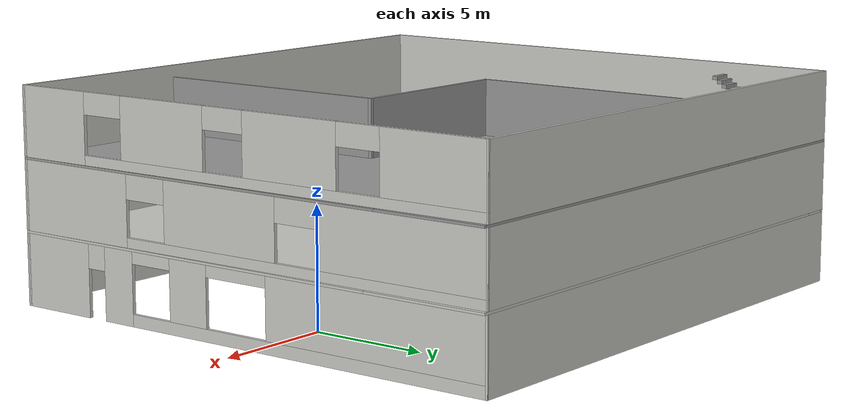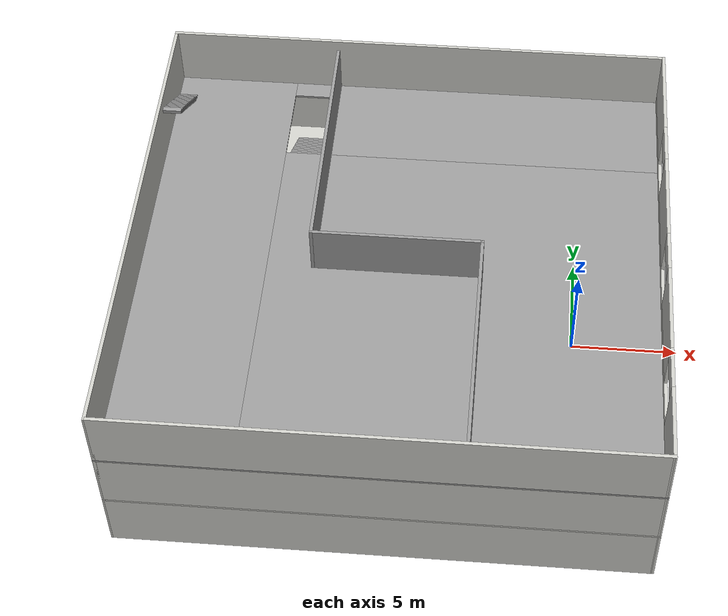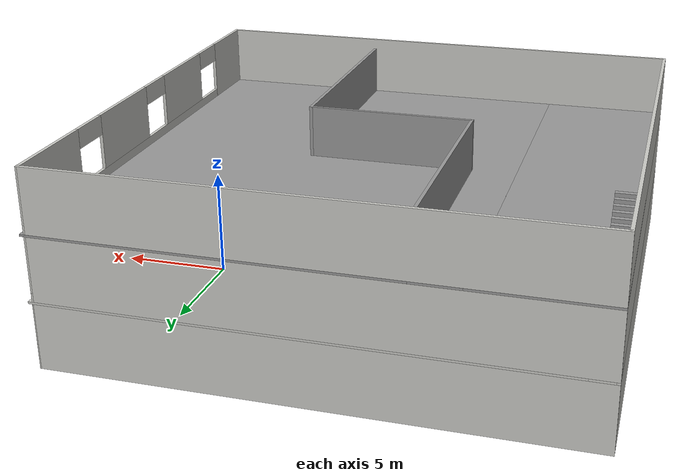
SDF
<?xml version='1.0'?>
<sdf version='1.7'>
  <model name='low_building'>
    <pose>-8.0788 -0.655 0 0 -0 0</pose>
    <link name='Floor_0'>
      <pose>0.000103 -0 3 0 -0 0</pose>
      <visual name='Floor_0_Visual_0'>
        <pose>-11.8375 0 0.05 0 -0 0</pose>
        <geometry>
          <box>
            <size>0.151533 23.0012 0.1</size>
          </box>
        </geometry>
        <material>
          <script>
            <uri>file://media/materials/scripts/gazebo.material</uri>
            <name>Gazebo/CeilingTiled</name>
          </script>
          <ambient>1 1 1 1</ambient>
        </material>
        <meta>
          <layer>1</layer>
        </meta>
      </visual>
      <collision name='Floor_0_Collision_0'>
        <geometry>
          <box>
            <size>0.151533 23.0012 0.1</size>
          </box>
        </geometry>
        <pose>-11.8375 0 0.05 0 -0 0</pose>
      </collision>
      <visual name='Floor_0_Visual_1'>
        <pose>0.075766 -2.684 0.05 0 -0 0</pose>
        <geometry>
          <box>
            <size>23.6751 17.6332 0.1</size>
          </box>
        </geometry>
        <material>
          <script>
            <uri>file://media/materials/scripts/gazebo.material</uri>
            <name>Gazebo/CeilingTiled</name>
          </script>
          <ambient>1 1 1 1</ambient>
        </material>
        <meta>
          <layer>1</layer>
        </meta>
      </visual>
      <collision name='Floor_0_Collision_1'>
        <geometry>
          <box>
            <size>23.6751 17.6332 0.1</size>
          </box>
        </geometry>
        <pose>0.075766 -2.684 0.05 0 -0 0</pose>
      </collision>
      <visual name='Floor_0_Visual_2'>
        <pose>0.575766 8.81661 0.05 0 -0 0</pose>
        <geometry>
          <box>
            <size>22.6751 5.36801 0.1</size>
          </box>
        </geometry>
        <material>
          <script>
            <uri>file://media/materials/scripts/gazebo.material</uri>
            <name>Gazebo/CeilingTiled</name>
          </script>
          <ambient>1 1 1 1</ambient>
        </material>
        <meta>
          <layer>1</layer>
        </meta>
      </visual>
      <collision name='Floor_0_Collision_2'>
        <geometry>
          <box>
            <size>22.6751 5.36801 0.1</size>
          </box>
        </geometry>
        <pose>0.575766 8.81661 0.05 0 -0 0</pose>
      </collision>
      <visual name='Floor_0_Visual_3'>
        <pose>-11.2618 10.5666 0.05 0 -0 0</pose>
        <geometry>
          <box>
            <size>1 1.86801 0.1</size>
          </box>
        </geometry>
        <material>
          <script>
            <uri>file://media/materials/scripts/gazebo.material</uri>
            <name>Gazebo/CeilingTiled</name>
          </script>
          <ambient>1 1 1 1</ambient>
        </material>
        <meta>
          <layer>1</layer>
        </meta>
      </visual>
      <collision name='Floor_0_Collision_3'>
        <geometry>
          <box>
            <size>1 1.86801 0.1</size>
          </box>
        </geometry>
        <pose>-11.2618 10.5666 0.05 0 -0 0</pose>
      </collision>
    </link>
    <link name='Floor_1'>
      <pose>0.000103 -0 6 0 -0 0</pose>
      <visual name='Floor_1_Visual_0'>
        <pose>-8.99477 0 0.05 0 -0 0</pose>
        <geometry>
          <box>
            <size>5.83706 23.0012 0.1</size>
          </box>
        </geometry>
        <material>
          <script>
            <uri>file://media/materials/scripts/gazebo.material</uri>
            <name>Gazebo/Grey</name>
          </script>
          <ambient>1 1 1 1</ambient>
        </material>
        <meta>
          <layer>2</layer>
        </meta>
      </visual>
      <collision name='Floor_1_Collision_0'>
        <geometry>
          <box>
            <size>5.83706 23.0012 0.1</size>
          </box>
        </geometry>
        <pose>-8.99477 0 0.05 0 -0 0</pose>
      </collision>
      <visual name='Floor_1_Visual_1'>
        <pose>2.91853 -2.44136 0.05 0 -0 0</pose>
        <geometry>
          <box>
            <size>17.9895 18.1185 0.1</size>
          </box>
        </geometry>
        <material>
          <script>
            <uri>file://media/materials/scripts/gazebo.material</uri>
            <name>Gazebo/Grey</name>
          </script>
          <ambient>1 1 1 1</ambient>
        </material>
        <meta>
          <layer>2</layer>
        </meta>
      </visual>
      <collision name='Floor_1_Collision_1'>
        <geometry>
          <box>
            <size>17.9895 18.1185 0.1</size>
          </box>
        </geometry>
        <pose>2.91853 -2.44136 0.05 0 -0 0</pose>
      </collision>
      <visual name='Floor_1_Visual_2'>
        <pose>3.95054 9.05926 0.05 0 -0 0</pose>
        <geometry>
          <box>
            <size>15.9255 4.88271 0.1</size>
          </box>
        </geometry>
        <material>
          <script>
            <uri>file://media/materials/scripts/gazebo.material</uri>
            <name>Gazebo/Grey</name>
          </script>
          <ambient>1 1 1 1</ambient>
        </material>
        <meta>
          <layer>2</layer>
        </meta>
      </visual>
      <collision name='Floor_1_Collision_2'>
        <geometry>
          <box>
            <size>15.9255 4.88271 0.1</size>
          </box>
        </geometry>
        <pose>3.95054 9.05926 0.05 0 -0 0</pose>
      </collision>
      <visual name='Floor_1_Visual_3'>
        <pose>-5.04424 10.9955 0.05 0 -0 0</pose>
        <geometry>
          <box>
            <size>2.06401 1.01031 0.1</size>
          </box>
        </geometry>
        <material>
          <script>
            <uri>file://media/materials/scripts/gazebo.material</uri>
            <name>Gazebo/Grey</name>
          </script>
          <ambient>1 1 1 1</ambient>
        </material>
        <meta>
          <layer>2</layer>
        </meta>
      </visual>
      <collision name='Floor_1_Collision_3'>
        <geometry>
          <box>
            <size>2.06401 1.01031 0.1</size>
          </box>
        </geometry>
        <pose>-5.04424 10.9955 0.05 0 -0 0</pose>
      </collision>
    </link>
    <link name='Stairs_2'>
      <visual name='Stairs_2_Visual_0'>
        <pose>-5.04413 10.3612 3.08333 0 -0 0</pose>
        <geometry>
          <box>
            <size>2.06401 0.25816 0.166667</size>
          </box>
        </geometry>
        <material>
          <script>
            <uri>file://media/materials/scripts/gazebo.material</uri>
            <name>Gazebo/Grey</name>
          </script>
          <ambient>1 1 1 1</ambient>
        </material>
        <meta>
          <layer>1</layer>
        </meta>
      </visual>
      <collision name='Stairs_2_Collision_0'>
        <geometry>
          <box>
            <size>2.06401 0.25816 0.166667</size>
          </box>
        </geometry>
        <pose>-5.04413 10.3612 3.08333 0 -0 0</pose>
      </collision>
      <visual name='Stairs_2_Visual_1'>
        <pose>-5.04413 10.1031 3.25 0 -0 0</pose>
        <geometry>
          <box>
            <size>2.06401 0.25816 0.166667</size>
          </box>
        </geometry>
        <material>
          <script>
            <uri>file://media/materials/scripts/gazebo.material</uri>
            <name>Gazebo/Grey</name>
          </script>
          <ambient>1 1 1 1</ambient>
        </material>
        <meta>
          <layer>1</layer>
        </meta>
      </visual>
      <collision name='Stairs_2_Collision_1'>
        <geometry>
          <box>
            <size>2.06401 0.25816 0.166667</size>
          </box>
        </geometry>
        <pose>-5.04413 10.1031 3.25 0 -0 0</pose>
      </collision>
      <visual name='Stairs_2_Visual_2'>
        <pose>-5.04413 9.8449 3.41667 0 -0 0</pose>
        <geometry>
          <box>
            <size>2.06401 0.25816 0.166667</size>
          </box>
        </geometry>
        <material>
          <script>
            <uri>file://media/materials/scripts/gazebo.material</uri>
            <name>Gazebo/Grey</name>
          </script>
          <ambient>1 1 1 1</ambient>
        </material>
        <meta>
          <layer>1</layer>
        </meta>
      </visual>
      <collision name='Stairs_2_Collision_2'>
        <geometry>
          <box>
            <size>2.06401 0.25816 0.166667</size>
          </box>
        </geometry>
        <pose>-5.04413 9.8449 3.41667 0 -0 0</pose>
      </collision>
      <visual name='Stairs_2_Visual_3'>
        <pose>-5.04413 9.58674 3.58333 0 -0 0</pose>
        <geometry>
          <box>
            <size>2.06401 0.25816 0.166667</size>
          </box>
        </geometry>
        <material>
          <script>
            <uri>file://media/materials/scripts/gazebo.material</uri>
            <name>Gazebo/Grey</name>
          </script>
          <ambient>1 1 1 1</ambient>
        </material>
        <meta>
          <layer>1</layer>
        </meta>
      </visual>
      <collision name='Stairs_2_Collision_3'>
        <geometry>
          <box>
            <size>2.06401 0.25816 0.166667</size>
          </box>
        </geometry>
        <pose>-5.04413 9.58674 3.58333 0 -0 0</pose>
      </collision>
      <visual name='Stairs_2_Visual_4'>
        <pose>-5.04413 9.32858 3.75 0 -0 0</pose>
        <geometry>
          <box>
            <size>2.06401 0.25816 0.166667</size>
          </box>
        </geometry>
        <material>
          <script>
            <uri>file://media/materials/scripts/gazebo.material</uri>
            <name>Gazebo/Grey</name>
          </script>
          <ambient>1 1 1 1</ambient>
        </material>
        <meta>
          <layer>1</layer>
        </meta>
      </visual>
      <collision name='Stairs_2_Collision_4'>
        <geometry>
          <box>
            <size>2.06401 0.25816 0.166667</size>
          </box>
        </geometry>
        <pose>-5.04413 9.32858 3.75 0 -0 0</pose>
      </collision>
      <visual name='Stairs_2_Visual_5'>
        <pose>-5.04413 9.07042 3.91667 0 -0 0</pose>
        <geometry>
          <box>
            <size>2.06401 0.25816 0.166667</size>
          </box>
        </geometry>
        <material>
          <script>
            <uri>file://media/materials/scripts/gazebo.material</uri>
            <name>Gazebo/Grey</name>
          </script>
          <ambient>1 1 1 1</ambient>
        </material>
        <meta>
          <layer>1</layer>
        </meta>
      </visual>
      <collision name='Stairs_2_Collision_5'>
        <geometry>
          <box>
            <size>2.06401 0.25816 0.166667</size>
          </box>
        </geometry>
        <pose>-5.04413 9.07042 3.91667 0 -0 0</pose>
      </collision>
      <visual name='Stairs_2_Visual_6'>
        <pose>-5.04413 8.81226 4.08333 0 -0 0</pose>
        <geometry>
          <box>
            <size>2.06401 0.25816 0.166667</size>
          </box>
        </geometry>
        <material>
          <script>
            <uri>file://media/materials/scripts/gazebo.material</uri>
            <name>Gazebo/Grey</name>
          </script>
          <ambient>1 1 1 1</ambient>
        </material>
        <meta>
          <layer>1</layer>
        </meta>
      </visual>
      <collision name='Stairs_2_Collision_6'>
        <geometry>
          <box>
            <size>2.06401 0.25816 0.166667</size>
          </box>
        </geometry>
        <pose>-5.04413 8.81226 4.08333 0 -0 0</pose>
      </collision>
      <visual name='Stairs_2_Visual_7'>
        <pose>-5.04413 8.5541 4.25 0 -0 0</pose>
        <geometry>
          <box>
            <size>2.06401 0.25816 0.166667</size>
          </box>
        </geometry>
        <material>
          <script>
            <uri>file://media/materials/scripts/gazebo.material</uri>
            <name>Gazebo/Grey</name>
          </script>
          <ambient>1 1 1 1</ambient>
        </material>
        <meta>
          <layer>1</layer>
        </meta>
      </visual>
      <collision name='Stairs_2_Collision_7'>
        <geometry>
          <box>
            <size>2.06401 0.25816 0.166667</size>
          </box>
        </geometry>
        <pose>-5.04413 8.5541 4.25 0 -0 0</pose>
      </collision>
      <visual name='Stairs_2_Visual_8'>
        <pose>-5.04413 8.29594 4.41667 0 -0 0</pose>
        <geometry>
          <box>
            <size>2.06401 0.25816 0.166667</size>
          </box>
        </geometry>
        <material>
          <script>
            <uri>file://media/materials/scripts/gazebo.material</uri>
            <name>Gazebo/Grey</name>
          </script>
          <ambient>1 1 1 1</ambient>
        </material>
        <meta>
          <layer>1</layer>
        </meta>
      </visual>
      <collision name='Stairs_2_Collision_8'>
        <geometry>
          <box>
            <size>2.06401 0.25816 0.166667</size>
          </box>
        </geometry>
        <pose>-5.04413 8.29594 4.41667 0 -0 0</pose>
      </collision>
      <visual name='Stairs_2_Visual_9'>
        <pose>-5.04413 8.03778 4.58333 0 -0 0</pose>
        <geometry>
          <box>
            <size>2.06401 0.25816 0.166667</size>
          </box>
        </geometry>
        <material>
          <script>
            <uri>file://media/materials/scripts/gazebo.material</uri>
            <name>Gazebo/Grey</name>
          </script>
          <ambient>1 1 1 1</ambient>
        </material>
        <meta>
          <layer>1</layer>
        </meta>
      </visual>
      <collision name='Stairs_2_Collision_9'>
        <geometry>
          <box>
            <size>2.06401 0.25816 0.166667</size>
          </box>
        </geometry>
        <pose>-5.04413 8.03778 4.58333 0 -0 0</pose>
      </collision>
      <visual name='Stairs_2_Visual_10'>
        <pose>-5.04413 7.77962 4.75 0 -0 0</pose>
        <geometry>
          <box>
            <size>2.06401 0.25816 0.166667</size>
          </box>
        </geometry>
        <material>
          <script>
            <uri>file://media/materials/scripts/gazebo.material</uri>
            <name>Gazebo/Grey</name>
          </script>
          <ambient>1 1 1 1</ambient>
        </material>
        <meta>
          <layer>1</layer>
        </meta>
      </visual>
      <collision name='Stairs_2_Collision_10'>
        <geometry>
          <box>
            <size>2.06401 0.25816 0.166667</size>
          </box>
        </geometry>
        <pose>-5.04413 7.77962 4.75 0 -0 0</pose>
      </collision>
      <visual name='Stairs_2_Visual_11'>
        <pose>-5.04413 7.52146 4.91667 0 -0 0</pose>
        <geometry>
          <box>
            <size>2.06401 0.25816 0.166667</size>
          </box>
        </geometry>
        <material>
          <script>
            <uri>file://media/materials/scripts/gazebo.material</uri>
            <name>Gazebo/Grey</name>
          </script>
          <ambient>1 1 1 1</ambient>
        </material>
        <meta>
          <layer>1</layer>
        </meta>
      </visual>
      <collision name='Stairs_2_Collision_11'>
        <geometry>
          <box>
            <size>2.06401 0.25816 0.166667</size>
          </box>
        </geometry>
        <pose>-5.04413 7.52146 4.91667 0 -0 0</pose>
      </collision>
      <visual name='Stairs_2_Visual_12'>
        <pose>-5.04413 7.2633 5.08333 0 -0 0</pose>
        <geometry>
          <box>
            <size>2.06401 0.25816 0.166667</size>
          </box>
        </geometry>
        <material>
          <script>
            <uri>file://media/materials/scripts/gazebo.material</uri>
            <name>Gazebo/Grey</name>
          </script>
          <ambient>1 1 1 1</ambient>
        </material>
        <meta>
          <layer>1</layer>
        </meta>
      </visual>
      <collision name='Stairs_2_Collision_12'>
        <geometry>
          <box>
            <size>2.06401 0.25816 0.166667</size>
          </box>
        </geometry>
        <pose>-5.04413 7.2633 5.08333 0 -0 0</pose>
      </collision>
      <visual name='Stairs_2_Visual_13'>
        <pose>-5.04413 7.00514 5.25 0 -0 0</pose>
        <geometry>
          <box>
            <size>2.06401 0.25816 0.166667</size>
          </box>
        </geometry>
        <material>
          <script>
            <uri>file://media/materials/scripts/gazebo.material</uri>
            <name>Gazebo/Grey</name>
          </script>
          <ambient>1 1 1 1</ambient>
        </material>
        <meta>
          <layer>1</layer>
        </meta>
      </visual>
      <collision name='Stairs_2_Collision_13'>
        <geometry>
          <box>
            <size>2.06401 0.25816 0.166667</size>
          </box>
        </geometry>
        <pose>-5.04413 7.00514 5.25 0 -0 0</pose>
      </collision>
      <visual name='Stairs_2_Visual_14'>
        <pose>-5.04413 6.74698 5.41667 0 -0 0</pose>
        <geometry>
          <box>
            <size>2.06401 0.25816 0.166667</size>
          </box>
        </geometry>
        <material>
          <script>
            <uri>file://media/materials/scripts/gazebo.material</uri>
            <name>Gazebo/Grey</name>
          </script>
          <ambient>1 1 1 1</ambient>
        </material>
        <meta>
          <layer>1</layer>
        </meta>
      </visual>
      <collision name='Stairs_2_Collision_14'>
        <geometry>
          <box>
            <size>2.06401 0.25816 0.166667</size>
          </box>
        </geometry>
        <pose>-5.04413 6.74698 5.41667 0 -0 0</pose>
      </collision>
    </link>
    <link name='Stairs_3'>
      <visual name='Stairs_3_Visual_0'>
        <pose>-11.2617 9.51594 0.083333 0 -0 0</pose>
        <geometry>
          <box>
            <size>1 0.233333 0.166667</size>
          </box>
        </geometry>
        <material>
          <script>
            <uri>file://media/materials/scripts/gazebo.material</uri>
            <name>Gazebo/Grey</name>
          </script>
          <ambient>1 1 1 1</ambient>
        </material>
        <meta>
          <layer>0</layer>
        </meta>
      </visual>
      <collision name='Stairs_3_Collision_0'>
        <geometry>
          <box>
            <size>1 0.233333 0.166667</size>
          </box>
        </geometry>
        <pose>-11.2617 9.51594 0.083333 0 -0 0</pose>
      </collision>
      <visual name='Stairs_3_Visual_1'>
        <pose>-11.2617 9.2826 0.25 0 -0 0</pose>
        <geometry>
          <box>
            <size>1 0.233333 0.166667</size>
          </box>
        </geometry>
        <material>
          <script>
            <uri>file://media/materials/scripts/gazebo.material</uri>
            <name>Gazebo/Grey</name>
          </script>
          <ambient>1 1 1 1</ambient>
        </material>
        <meta>
          <layer>0</layer>
        </meta>
      </visual>
      <collision name='Stairs_3_Collision_1'>
        <geometry>
          <box>
            <size>1 0.233333 0.166667</size>
          </box>
        </geometry>
        <pose>-11.2617 9.2826 0.25 0 -0 0</pose>
      </collision>
      <visual name='Stairs_3_Visual_2'>
        <pose>-11.2617 9.04927 0.416667 0 -0 0</pose>
        <geometry>
          <box>
            <size>1 0.233333 0.166667</size>
          </box>
        </geometry>
        <material>
          <script>
            <uri>file://media/materials/scripts/gazebo.material</uri>
            <name>Gazebo/Grey</name>
          </script>
          <ambient>1 1 1 1</ambient>
        </material>
        <meta>
          <layer>0</layer>
        </meta>
      </visual>
      <collision name='Stairs_3_Collision_2'>
        <geometry>
          <box>
            <size>1 0.233333 0.166667</size>
          </box>
        </geometry>
        <pose>-11.2617 9.04927 0.416667 0 -0 0</pose>
      </collision>
      <visual name='Stairs_3_Visual_3'>
        <pose>-11.2617 8.81594 0.583333 0 -0 0</pose>
        <geometry>
          <box>
            <size>1 0.233333 0.166667</size>
          </box>
        </geometry>
        <material>
          <script>
            <uri>file://media/materials/scripts/gazebo.material</uri>
            <name>Gazebo/Grey</name>
          </script>
          <ambient>1 1 1 1</ambient>
        </material>
        <meta>
          <layer>0</layer>
        </meta>
      </visual>
      <collision name='Stairs_3_Collision_3'>
        <geometry>
          <box>
            <size>1 0.233333 0.166667</size>
          </box>
        </geometry>
        <pose>-11.2617 8.81594 0.583333 0 -0 0</pose>
      </collision>
      <visual name='Stairs_3_Visual_4'>
        <pose>-11.2617 8.5826 0.75 0 -0 0</pose>
        <geometry>
          <box>
            <size>1 0.233333 0.166667</size>
          </box>
        </geometry>
        <material>
          <script>
            <uri>file://media/materials/scripts/gazebo.material</uri>
            <name>Gazebo/Grey</name>
          </script>
          <ambient>1 1 1 1</ambient>
        </material>
        <meta>
          <layer>0</layer>
        </meta>
      </visual>
      <collision name='Stairs_3_Collision_4'>
        <geometry>
          <box>
            <size>1 0.233333 0.166667</size>
          </box>
        </geometry>
        <pose>-11.2617 8.5826 0.75 0 -0 0</pose>
      </collision>
      <visual name='Stairs_3_Visual_5'>
        <pose>-11.2617 8.34927 0.916667 0 -0 0</pose>
        <geometry>
          <box>
            <size>1 0.233333 0.166667</size>
          </box>
        </geometry>
        <material>
          <script>
            <uri>file://media/materials/scripts/gazebo.material</uri>
            <name>Gazebo/Grey</name>
          </script>
          <ambient>1 1 1 1</ambient>
        </material>
        <meta>
          <layer>0</layer>
        </meta>
      </visual>
      <collision name='Stairs_3_Collision_5'>
        <geometry>
          <box>
            <size>1 0.233333 0.166667</size>
          </box>
        </geometry>
        <pose>-11.2617 8.34927 0.916667 0 -0 0</pose>
      </collision>
      <visual name='Stairs_3_Visual_6'>
        <pose>-11.2617 8.11594 1.08333 0 -0 0</pose>
        <geometry>
          <box>
            <size>1 0.233333 0.166667</size>
          </box>
        </geometry>
        <material>
          <script>
            <uri>file://media/materials/scripts/gazebo.material</uri>
            <name>Gazebo/Grey</name>
          </script>
          <ambient>1 1 1 1</ambient>
        </material>
        <meta>
          <layer>0</layer>
        </meta>
      </visual>
      <collision name='Stairs_3_Collision_6'>
        <geometry>
          <box>
            <size>1 0.233333 0.166667</size>
          </box>
        </geometry>
        <pose>-11.2617 8.11594 1.08333 0 -0 0</pose>
      </collision>
      <visual name='Stairs_3_Visual_7'>
        <pose>-11.2617 7.8826 1.25 0 -0 0</pose>
        <geometry>
          <box>
            <size>1 0.233333 0.166667</size>
          </box>
        </geometry>
        <material>
          <script>
            <uri>file://media/materials/scripts/gazebo.material</uri>
            <name>Gazebo/Grey</name>
          </script>
          <ambient>1 1 1 1</ambient>
        </material>
        <meta>
          <layer>0</layer>
        </meta>
      </visual>
      <collision name='Stairs_3_Collision_7'>
        <geometry>
          <box>
            <size>1 0.233333 0.166667</size>
          </box>
        </geometry>
        <pose>-11.2617 7.8826 1.25 0 -0 0</pose>
      </collision>
      <visual name='Stairs_3_Visual_8'>
        <pose>-11.2617 7.64927 1.41667 0 -0 0</pose>
        <geometry>
          <box>
            <size>1 0.233333 0.166667</size>
          </box>
        </geometry>
        <material>
          <script>
            <uri>file://media/materials/scripts/gazebo.material</uri>
            <name>Gazebo/Grey</name>
          </script>
          <ambient>1 1 1 1</ambient>
        </material>
        <meta>
          <layer>0</layer>
        </meta>
      </visual>
      <collision name='Stairs_3_Collision_8'>
        <geometry>
          <box>
            <size>1 0.233333 0.166667</size>
          </box>
        </geometry>
        <pose>-11.2617 7.64927 1.41667 0 -0 0</pose>
      </collision>
      <visual name='Stairs_3_Visual_9'>
        <pose>-11.2617 7.41594 1.58333 0 -0 0</pose>
        <geometry>
          <box>
            <size>1 0.233333 0.166667</size>
          </box>
        </geometry>
        <material>
          <script>
            <uri>file://media/materials/scripts/gazebo.material</uri>
            <name>Gazebo/Grey</name>
          </script>
          <ambient>1 1 1 1</ambient>
        </material>
        <meta>
          <layer>0</layer>
        </meta>
      </visual>
      <collision name='Stairs_3_Collision_9'>
        <geometry>
          <box>
            <size>1 0.233333 0.166667</size>
          </box>
        </geometry>
        <pose>-11.2617 7.41594 1.58333 0 -0 0</pose>
      </collision>
      <visual name='Stairs_3_Visual_10'>
        <pose>-11.2617 7.1826 1.75 0 -0 0</pose>
        <geometry>
          <box>
            <size>1 0.233333 0.166667</size>
          </box>
        </geometry>
        <material>
          <script>
            <uri>file://media/materials/scripts/gazebo.material</uri>
            <name>Gazebo/Grey</name>
          </script>
          <ambient>1 1 1 1</ambient>
        </material>
        <meta>
          <layer>0</layer>
        </meta>
      </visual>
      <collision name='Stairs_3_Collision_10'>
        <geometry>
          <box>
            <size>1 0.233333 0.166667</size>
          </box>
        </geometry>
        <pose>-11.2617 7.1826 1.75 0 -0 0</pose>
      </collision>
      <visual name='Stairs_3_Visual_11'>
        <pose>-11.2617 6.94927 1.91667 0 -0 0</pose>
        <geometry>
          <box>
            <size>1 0.233333 0.166667</size>
          </box>
        </geometry>
        <material>
          <script>
            <uri>file://media/materials/scripts/gazebo.material</uri>
            <name>Gazebo/Grey</name>
          </script>
          <ambient>1 1 1 1</ambient>
        </material>
        <meta>
          <layer>0</layer>
        </meta>
      </visual>
      <collision name='Stairs_3_Collision_11'>
        <geometry>
          <box>
            <size>1 0.233333 0.166667</size>
          </box>
        </geometry>
        <pose>-11.2617 6.94927 1.91667 0 -0 0</pose>
      </collision>
      <visual name='Stairs_3_Visual_12'>
        <pose>-11.2617 6.71594 2.08333 0 -0 0</pose>
        <geometry>
          <box>
            <size>1 0.233333 0.166667</size>
          </box>
        </geometry>
        <material>
          <script>
            <uri>file://media/materials/scripts/gazebo.material</uri>
            <name>Gazebo/Grey</name>
          </script>
          <ambient>1 1 1 1</ambient>
        </material>
        <meta>
          <layer>0</layer>
        </meta>
      </visual>
      <collision name='Stairs_3_Collision_12'>
        <geometry>
          <box>
            <size>1 0.233333 0.166667</size>
          </box>
        </geometry>
        <pose>-11.2617 6.71594 2.08333 0 -0 0</pose>
      </collision>
      <visual name='Stairs_3_Visual_13'>
        <pose>-11.2617 6.4826 2.25 0 -0 0</pose>
        <geometry>
          <box>
            <size>1 0.233333 0.166667</size>
          </box>
        </geometry>
        <material>
          <script>
            <uri>file://media/materials/scripts/gazebo.material</uri>
            <name>Gazebo/Grey</name>
          </script>
          <ambient>1 1 1 1</ambient>
        </material>
        <meta>
          <layer>0</layer>
        </meta>
      </visual>
      <collision name='Stairs_3_Collision_13'>
        <geometry>
          <box>
            <size>1 0.233333 0.166667</size>
          </box>
        </geometry>
        <pose>-11.2617 6.4826 2.25 0 -0 0</pose>
      </collision>
      <visual name='Stairs_3_Visual_14'>
        <pose>-11.2617 6.24927 2.41667 0 -0 0</pose>
        <geometry>
          <box>
            <size>1 0.233333 0.166667</size>
          </box>
        </geometry>
        <material>
          <script>
            <uri>file://media/materials/scripts/gazebo.material</uri>
            <name>Gazebo/Grey</name>
          </script>
          <ambient>1 1 1 1</ambient>
        </material>
        <meta>
          <layer>0</layer>
        </meta>
      </visual>
      <collision name='Stairs_3_Collision_14'>
        <geometry>
          <box>
            <size>1 0.233333 0.166667</size>
          </box>
        </geometry>
        <pose>-11.2617 6.24927 2.41667 0 -0 0</pose>
      </collision>
    </link>
    <link name='Stairs_4'>
      <visual name='Stairs_4_Visual_0'>
        <pose>-11.4012 9.98118 6.08333 0 -0 0</pose>
        <geometry>
          <box>
            <size>1 0.233333 0.166667</size>
          </box>
        </geometry>
        <material>
          <script>
            <uri>file://media/materials/scripts/gazebo.material</uri>
            <name>Gazebo/Grey</name>
          </script>
          <ambient>1 1 1 1</ambient>
        </material>
        <meta>
          <layer>2</layer>
        </meta>
      </visual>
      <collision name='Stairs_4_Collision_0'>
        <geometry>
          <box>
            <size>1 0.233333 0.166667</size>
          </box>
        </geometry>
        <pose>-11.4012 9.98118 6.08333 0 -0 0</pose>
      </collision>
      <visual name='Stairs_4_Visual_1'>
        <pose>-11.4012 9.74784 6.25 0 -0 0</pose>
        <geometry>
          <box>
            <size>1 0.233333 0.166667</size>
          </box>
        </geometry>
        <material>
          <script>
            <uri>file://media/materials/scripts/gazebo.material</uri>
            <name>Gazebo/Grey</name>
          </script>
          <ambient>1 1 1 1</ambient>
        </material>
        <meta>
          <layer>2</layer>
        </meta>
      </visual>
      <collision name='Stairs_4_Collision_1'>
        <geometry>
          <box>
            <size>1 0.233333 0.166667</size>
          </box>
        </geometry>
        <pose>-11.4012 9.74784 6.25 0 -0 0</pose>
      </collision>
      <visual name='Stairs_4_Visual_2'>
        <pose>-11.4012 9.51451 6.41667 0 -0 0</pose>
        <geometry>
          <box>
            <size>1 0.233333 0.166667</size>
          </box>
        </geometry>
        <material>
          <script>
            <uri>file://media/materials/scripts/gazebo.material</uri>
            <name>Gazebo/Grey</name>
          </script>
          <ambient>1 1 1 1</ambient>
        </material>
        <meta>
          <layer>2</layer>
        </meta>
      </visual>
      <collision name='Stairs_4_Collision_2'>
        <geometry>
          <box>
            <size>1 0.233333 0.166667</size>
          </box>
        </geometry>
        <pose>-11.4012 9.51451 6.41667 0 -0 0</pose>
      </collision>
      <visual name='Stairs_4_Visual_3'>
        <pose>-11.4012 9.28117 6.58333 0 -0 0</pose>
        <geometry>
          <box>
            <size>1 0.233333 0.166667</size>
          </box>
        </geometry>
        <material>
          <script>
            <uri>file://media/materials/scripts/gazebo.material</uri>
            <name>Gazebo/Grey</name>
          </script>
          <ambient>1 1 1 1</ambient>
        </material>
        <meta>
          <layer>2</layer>
        </meta>
      </visual>
      <collision name='Stairs_4_Collision_3'>
        <geometry>
          <box>
            <size>1 0.233333 0.166667</size>
          </box>
        </geometry>
        <pose>-11.4012 9.28117 6.58333 0 -0 0</pose>
      </collision>
      <visual name='Stairs_4_Visual_4'>
        <pose>-11.4012 9.04784 6.75 0 -0 0</pose>
        <geometry>
          <box>
            <size>1 0.233333 0.166667</size>
          </box>
        </geometry>
        <material>
          <script>
            <uri>file://media/materials/scripts/gazebo.material</uri>
            <name>Gazebo/Grey</name>
          </script>
          <ambient>1 1 1 1</ambient>
        </material>
        <meta>
          <layer>2</layer>
        </meta>
      </visual>
      <collision name='Stairs_4_Collision_4'>
        <geometry>
          <box>
            <size>1 0.233333 0.166667</size>
          </box>
        </geometry>
        <pose>-11.4012 9.04784 6.75 0 -0 0</pose>
      </collision>
      <visual name='Stairs_4_Visual_5'>
        <pose>-11.4012 8.81451 6.91667 0 -0 0</pose>
        <geometry>
          <box>
            <size>1 0.233333 0.166667</size>
          </box>
        </geometry>
        <material>
          <script>
            <uri>file://media/materials/scripts/gazebo.material</uri>
            <name>Gazebo/Grey</name>
          </script>
          <ambient>1 1 1 1</ambient>
        </material>
        <meta>
          <layer>2</layer>
        </meta>
      </visual>
      <collision name='Stairs_4_Collision_5'>
        <geometry>
          <box>
            <size>1 0.233333 0.166667</size>
          </box>
        </geometry>
        <pose>-11.4012 8.81451 6.91667 0 -0 0</pose>
      </collision>
      <visual name='Stairs_4_Visual_6'>
        <pose>-11.4012 8.58117 7.08333 0 -0 0</pose>
        <geometry>
          <box>
            <size>1 0.233333 0.166667</size>
          </box>
        </geometry>
        <material>
          <script>
            <uri>file://media/materials/scripts/gazebo.material</uri>
            <name>Gazebo/Grey</name>
          </script>
          <ambient>1 1 1 1</ambient>
        </material>
        <meta>
          <layer>2</layer>
        </meta>
      </visual>
      <collision name='Stairs_4_Collision_6'>
        <geometry>
          <box>
            <size>1 0.233333 0.166667</size>
          </box>
        </geometry>
        <pose>-11.4012 8.58117 7.08333 0 -0 0</pose>
      </collision>
      <visual name='Stairs_4_Visual_7'>
        <pose>-11.4012 8.34784 7.25 0 -0 0</pose>
        <geometry>
          <box>
            <size>1 0.233333 0.166667</size>
          </box>
        </geometry>
        <material>
          <script>
            <uri>file://media/materials/scripts/gazebo.material</uri>
            <name>Gazebo/Grey</name>
          </script>
          <ambient>1 1 1 1</ambient>
        </material>
        <meta>
          <layer>2</layer>
        </meta>
      </visual>
      <collision name='Stairs_4_Collision_7'>
        <geometry>
          <box>
            <size>1 0.233333 0.166667</size>
          </box>
        </geometry>
        <pose>-11.4012 8.34784 7.25 0 -0 0</pose>
      </collision>
      <visual name='Stairs_4_Visual_8'>
        <pose>-11.4012 8.11451 7.41667 0 -0 0</pose>
        <geometry>
          <box>
            <size>1 0.233333 0.166667</size>
          </box>
        </geometry>
        <material>
          <script>
            <uri>file://media/materials/scripts/gazebo.material</uri>
            <name>Gazebo/Grey</name>
          </script>
          <ambient>1 1 1 1</ambient>
        </material>
        <meta>
          <layer>2</layer>
        </meta>
      </visual>
      <collision name='Stairs_4_Collision_8'>
        <geometry>
          <box>
            <size>1 0.233333 0.166667</size>
          </box>
        </geometry>
        <pose>-11.4012 8.11451 7.41667 0 -0 0</pose>
      </collision>
      <visual name='Stairs_4_Visual_9'>
        <pose>-11.4012 7.88117 7.58333 0 -0 0</pose>
        <geometry>
          <box>
            <size>1 0.233333 0.166667</size>
          </box>
        </geometry>
        <material>
          <script>
            <uri>file://media/materials/scripts/gazebo.material</uri>
            <name>Gazebo/Grey</name>
          </script>
          <ambient>1 1 1 1</ambient>
        </material>
        <meta>
          <layer>2</layer>
        </meta>
      </visual>
      <collision name='Stairs_4_Collision_9'>
        <geometry>
          <box>
            <size>1 0.233333 0.166667</size>
          </box>
        </geometry>
        <pose>-11.4012 7.88117 7.58333 0 -0 0</pose>
      </collision>
      <visual name='Stairs_4_Visual_10'>
        <pose>-11.4012 7.64784 7.75 0 -0 0</pose>
        <geometry>
          <box>
            <size>1 0.233333 0.166667</size>
          </box>
        </geometry>
        <material>
          <script>
            <uri>file://media/materials/scripts/gazebo.material</uri>
            <name>Gazebo/Grey</name>
          </script>
          <ambient>1 1 1 1</ambient>
        </material>
        <meta>
          <layer>2</layer>
        </meta>
      </visual>
      <collision name='Stairs_4_Collision_10'>
        <geometry>
          <box>
            <size>1 0.233333 0.166667</size>
          </box>
        </geometry>
        <pose>-11.4012 7.64784 7.75 0 -0 0</pose>
      </collision>
      <visual name='Stairs_4_Visual_11'>
        <pose>-11.4012 7.41451 7.91667 0 -0 0</pose>
        <geometry>
          <box>
            <size>1 0.233333 0.166667</size>
          </box>
        </geometry>
        <material>
          <script>
            <uri>file://media/materials/scripts/gazebo.material</uri>
            <name>Gazebo/Grey</name>
          </script>
          <ambient>1 1 1 1</ambient>
        </material>
        <meta>
          <layer>2</layer>
        </meta>
      </visual>
      <collision name='Stairs_4_Collision_11'>
        <geometry>
          <box>
            <size>1 0.233333 0.166667</size>
          </box>
        </geometry>
        <pose>-11.4012 7.41451 7.91667 0 -0 0</pose>
      </collision>
      <visual name='Stairs_4_Visual_12'>
        <pose>-11.4012 7.18117 8.08333 0 -0 0</pose>
        <geometry>
          <box>
            <size>1 0.233333 0.166667</size>
          </box>
        </geometry>
        <material>
          <script>
            <uri>file://media/materials/scripts/gazebo.material</uri>
            <name>Gazebo/Grey</name>
          </script>
          <ambient>1 1 1 1</ambient>
        </material>
        <meta>
          <layer>2</layer>
        </meta>
      </visual>
      <collision name='Stairs_4_Collision_12'>
        <geometry>
          <box>
            <size>1 0.233333 0.166667</size>
          </box>
        </geometry>
        <pose>-11.4012 7.18117 8.08333 0 -0 0</pose>
      </collision>
      <visual name='Stairs_4_Visual_13'>
        <pose>-11.4012 6.94784 8.25 0 -0 0</pose>
        <geometry>
          <box>
            <size>1 0.233333 0.166667</size>
          </box>
        </geometry>
        <material>
          <script>
            <uri>file://media/materials/scripts/gazebo.material</uri>
            <name>Gazebo/Grey</name>
          </script>
          <ambient>1 1 1 1</ambient>
        </material>
        <meta>
          <layer>2</layer>
        </meta>
      </visual>
      <collision name='Stairs_4_Collision_13'>
        <geometry>
          <box>
            <size>1 0.233333 0.166667</size>
          </box>
        </geometry>
        <pose>-11.4012 6.94784 8.25 0 -0 0</pose>
      </collision>
      <visual name='Stairs_4_Visual_14'>
        <pose>-11.4012 6.71451 8.41667 0 -0 0</pose>
        <geometry>
          <box>
            <size>1 0.233333 0.166667</size>
          </box>
        </geometry>
        <material>
          <script>
            <uri>file://media/materials/scripts/gazebo.material</uri>
            <name>Gazebo/Grey</name>
          </script>
          <ambient>1 1 1 1</ambient>
        </material>
        <meta>
          <layer>2</layer>
        </meta>
      </visual>
      <collision name='Stairs_4_Collision_14'>
        <geometry>
          <box>
            <size>1 0.233333 0.166667</size>
          </box>
        </geometry>
        <pose>-11.4012 6.71451 8.41667 0 -0 0</pose>
      </collision>
    </link>
    <link name='Wall_10'>
      <pose>11.7443 -0 0 0 -0 1.57898</pose>
      <visual name='Wall_10_Visual_0'>
        <pose>-9.72917 0 1.5 0 -0 0</pose>
        <geometry>
          <box>
            <size>3.54198 0.15 3</size>
          </box>
        </geometry>
        <material>
          <script>
            <uri>file://media/materials/scripts/gazebo.material</uri>
            <name>Gazebo/CeilingTiled</name>
          </script>
          <ambient>1 1 1 1</ambient>
        </material>
        <meta>
          <layer>0</layer>
        </meta>
      </visual>
      <collision name='Wall_10_Collision_0'>
        <geometry>
          <box>
            <size>3.54198 0.15 3</size>
          </box>
        </geometry>
        <pose>-9.72917 0 1.5 0 -0 0</pose>
      </collision>
      <visual name='Wall_10_Visual_1'>
        <pose>-6.29994 0 1.5 0 -0 0</pose>
        <geometry>
          <box>
            <size>1.5165 0.15 3</size>
          </box>
        </geometry>
        <material>
          <script>
            <uri>file://media/materials/scripts/gazebo.material</uri>
            <name>Gazebo/CeilingTiled</name>
          </script>
          <ambient>1 1 1 1</ambient>
        </material>
        <meta>
          <layer>0</layer>
        </meta>
      </visual>
      <collision name='Wall_10_Collision_1'>
        <geometry>
          <box>
            <size>1.5165 0.15 3</size>
          </box>
        </geometry>
        <pose>-6.29994 0 1.5 0 -0 0</pose>
      </collision>
      <visual name='Wall_10_Visual_2'>
        <pose>2.97924 0 0.25 0 -0 0</pose>
        <geometry>
          <box>
            <size>17.0419 0.15 0.5</size>
          </box>
        </geometry>
        <material>
          <script>
            <uri>file://media/materials/scripts/gazebo.material</uri>
            <name>Gazebo/CeilingTiled</name>
          </script>
          <ambient>1 1 1 1</ambient>
        </material>
        <meta>
          <layer>0</layer>
        </meta>
      </visual>
      <collision name='Wall_10_Collision_2'>
        <geometry>
          <box>
            <size>17.0419 0.15 0.5</size>
          </box>
        </geometry>
        <pose>2.97924 0 0.25 0 -0 0</pose>
      </collision>
      <visual name='Wall_10_Visual_3'>
        <pose>-2.58823 0 1.75 0 -0 0</pose>
        <geometry>
          <box>
            <size>1.90692 0.15 2.5</size>
          </box>
        </geometry>
        <material>
          <script>
            <uri>file://media/materials/scripts/gazebo.material</uri>
            <name>Gazebo/CeilingTiled</name>
          </script>
          <ambient>1 1 1 1</ambient>
        </material>
        <meta>
          <layer>0</layer>
        </meta>
      </visual>
      <collision name='Wall_10_Collision_3'>
        <geometry>
          <box>
            <size>1.90692 0.15 2.5</size>
          </box>
        </geometry>
        <pose>-2.58823 0 1.75 0 -0 0</pose>
      </collision>
      <visual name='Wall_10_Visual_4'>
        <pose>6.4327 0 1.75 0 -0 0</pose>
        <geometry>
          <box>
            <size>10.1349 0.15 2.5</size>
          </box>
        </geometry>
        <material>
          <script>
            <uri>file://media/materials/scripts/gazebo.material</uri>
            <name>Gazebo/CeilingTiled</name>
          </script>
          <ambient>1 1 1 1</ambient>
        </material>
        <meta>
          <layer>0</layer>
        </meta>
      </visual>
      <collision name='Wall_10_Collision_4'>
        <geometry>
          <box>
            <size>10.1349 0.15 2.5</size>
          </box>
        </geometry>
        <pose>6.4327 0 1.75 0 -0 0</pose>
      </collision>
      <visual name='Wall_10_Visual_5'>
        <pose>-7.50819 0 2.5 0 -0 0</pose>
        <geometry>
          <box>
            <size>0.9 0.15 1</size>
          </box>
        </geometry>
        <material>
          <script>
            <uri>file://media/materials/scripts/gazebo.material</uri>
            <name>Gazebo/CeilingTiled</name>
          </script>
          <ambient>1 1 1 1</ambient>
        </material>
        <meta>
          <layer>0</layer>
        </meta>
      </visual>
      <collision name='Wall_10_Collision_5'>
        <geometry>
          <box>
            <size>0.9 0.15 1</size>
          </box>
        </geometry>
        <pose>-7.50819 0 2.5 0 -0 0</pose>
      </collision>
      <visual name='Wall_10_Visual_6'>
        <pose>-4.54169 0 2.75 0 -0 0</pose>
        <geometry>
          <box>
            <size>2 0.15 0.5</size>
          </box>
        </geometry>
        <material>
          <script>
            <uri>file://media/materials/scripts/gazebo.material</uri>
            <name>Gazebo/CeilingTiled</name>
          </script>
          <ambient>1 1 1 1</ambient>
        </material>
        <meta>
          <layer>0</layer>
        </meta>
      </visual>
      <collision name='Wall_10_Collision_6'>
        <geometry>
          <box>
            <size>2 0.15 0.5</size>
          </box>
        </geometry>
        <pose>-4.54169 0 2.75 0 -0 0</pose>
      </collision>
      <visual name='Wall_10_Visual_7'>
        <pose>-0.134768 0 2.75 0 -0 0</pose>
        <geometry>
          <box>
            <size>3 0.15 0.5</size>
          </box>
        </geometry>
        <material>
          <script>
            <uri>file://media/materials/scripts/gazebo.material</uri>
            <name>Gazebo/CeilingTiled</name>
          </script>
          <ambient>1 1 1 1</ambient>
        </material>
        <meta>
          <layer>0</layer>
        </meta>
      </visual>
      <collision name='Wall_10_Collision_7'>
        <geometry>
          <box>
            <size>3 0.15 0.5</size>
          </box>
        </geometry>
        <pose>-0.134768 0 2.75 0 -0 0</pose>
      </collision>
    </link>
    <link name='Wall_11'>
      <collision name='Wall_11_Collision'>
        <geometry>
          <box>
            <size>23.6394 0.15 3</size>
          </box>
        </geometry>
        <pose>0 0 1.5 0 -0 0</pose>
      </collision>
      <visual name='Wall_11_Visual'>
        <pose>0 0 1.5 0 -0 0</pose>
        <geometry>
          <box>
            <size>23.6394 0.15 3</size>
          </box>
        </geometry>
        <material>
          <script>
            <uri>file://media/materials/scripts/gazebo.material</uri>
            <name>Gazebo/CeilingTiled</name>
          </script>
          <ambient>1 1 1 1</ambient>
        </material>
        <meta>
          <layer>0</layer>
        </meta>
      </visual>
      <pose>-0.093702 11.425 0 0 -0 3.14159</pose>
    </link>
    <link name='Wall_12'>
      <collision name='Wall_12_Collision'>
        <geometry>
          <box>
            <size>23 0.15 3</size>
          </box>
        </geometry>
        <pose>0 0 1.5 0 -0 0</pose>
      </collision>
      <visual name='Wall_12_Visual'>
        <pose>0 0 1.5 0 -0 0</pose>
        <geometry>
          <box>
            <size>23 0.15 3</size>
          </box>
        </geometry>
        <material>
          <script>
            <uri>file://media/materials/scripts/gazebo.material</uri>
            <name>Gazebo/CeilingTiled</name>
          </script>
          <ambient>1 1 1 1</ambient>
        </material>
        <meta>
          <layer>0</layer>
        </meta>
      </visual>
      <pose>-11.8382 -0 0 0 -0 -1.5708</pose>
    </link>
    <link name='Wall_14'>
      <collision name='Wall_14_Collision'>
        <geometry>
          <box>
            <size>11 0.15 2.5</size>
          </box>
        </geometry>
        <pose>0 0 1.25 0 -0 0</pose>
      </collision>
      <visual name='Wall_14_Visual'>
        <pose>0 0 1.25 0 -0 0</pose>
        <geometry>
          <box>
            <size>11 0.15 2.5</size>
          </box>
        </geometry>
        <material>
          <script>
            <uri>file://media/materials/scripts/gazebo.material</uri>
            <name>Gazebo/Grey</name>
          </script>
          <ambient>1 1 1 1</ambient>
        </material>
        <meta>
          <layer>0</layer>
        </meta>
      </visual>
      <pose>3.62882 -5.79491 0 0 -0 1.5708</pose>
    </link>
    <link name='Wall_15'>
      <pose>-0.171177 -0.369911 0 0 -0 3.14159</pose>
      <visual name='Wall_15_Visual_0'>
        <pose>-2.65212 0 1.25 0 -0 0</pose>
        <geometry>
          <box>
            <size>2.44576 0.15 2.5</size>
          </box>
        </geometry>
        <material>
          <script>
            <uri>file://media/materials/scripts/gazebo.material</uri>
            <name>Gazebo/Grey</name>
          </script>
          <ambient>1 1 1 1</ambient>
        </material>
        <meta>
          <layer>0</layer>
        </meta>
      </visual>
      <collision name='Wall_15_Collision_0'>
        <geometry>
          <box>
            <size>2.44576 0.15 2.5</size>
          </box>
        </geometry>
        <pose>-2.65212 0 1.25 0 -0 0</pose>
      </collision>
      <visual name='Wall_15_Visual_1'>
        <pose>1.82288 0 1.25 0 -0 0</pose>
        <geometry>
          <box>
            <size>4.10424 0.15 2.5</size>
          </box>
        </geometry>
        <material>
          <script>
            <uri>file://media/materials/scripts/gazebo.material</uri>
            <name>Gazebo/Grey</name>
          </script>
          <ambient>1 1 1 1</ambient>
        </material>
        <meta>
          <layer>0</layer>
        </meta>
      </visual>
      <collision name='Wall_15_Collision_1'>
        <geometry>
          <box>
            <size>4.10424 0.15 2.5</size>
          </box>
        </geometry>
        <pose>1.82288 0 1.25 0 -0 0</pose>
      </collision>
      <visual name='Wall_15_Visual_2'>
        <pose>-0.829244 0 2.25 0 -0 0</pose>
        <geometry>
          <box>
            <size>1.2 0.15 0.5</size>
          </box>
        </geometry>
        <material>
          <script>
            <uri>file://media/materials/scripts/gazebo.material</uri>
            <name>Gazebo/Grey</name>
          </script>
          <ambient>1 1 1 1</ambient>
        </material>
        <meta>
          <layer>0</layer>
        </meta>
      </visual>
      <collision name='Wall_15_Collision_2'>
        <geometry>
          <box>
            <size>1.2 0.15 0.5</size>
          </box>
        </geometry>
        <pose>-0.829244 0 2.25 0 -0 0</pose>
      </collision>
    </link>
    <link name='Wall_16'>
      <pose>-3.97118 5.43009 0 0 -0 1.5708</pose>
      <visual name='Wall_16_Visual_0'>
        <pose>-3.05035 0 1.25 0 -0 0</pose>
        <geometry>
          <box>
            <size>5.6493 0.15 2.5</size>
          </box>
        </geometry>
        <material>
          <script>
            <uri>file://media/materials/scripts/gazebo.material</uri>
            <name>Gazebo/Grey</name>
          </script>
          <ambient>1 1 1 1</ambient>
        </material>
        <meta>
          <layer>0</layer>
        </meta>
      </visual>
      <collision name='Wall_16_Collision_0'>
        <geometry>
          <box>
            <size>5.6493 0.15 2.5</size>
          </box>
        </geometry>
        <pose>-3.05035 0 1.25 0 -0 0</pose>
      </collision>
      <visual name='Wall_16_Visual_1'>
        <pose>3.57465 0 1.25 0 -0 0</pose>
        <geometry>
          <box>
            <size>4.6007 0.15 2.5</size>
          </box>
        </geometry>
        <material>
          <script>
            <uri>file://media/materials/scripts/gazebo.material</uri>
            <name>Gazebo/Grey</name>
          </script>
          <ambient>1 1 1 1</ambient>
        </material>
        <meta>
          <layer>0</layer>
        </meta>
      </visual>
      <collision name='Wall_16_Collision_1'>
        <geometry>
          <box>
            <size>4.6007 0.15 2.5</size>
          </box>
        </geometry>
        <pose>3.57465 0 1.25 0 -0 0</pose>
      </collision>
      <visual name='Wall_16_Visual_2'>
        <pose>0.524303 0 2.25 0 -0 0</pose>
        <geometry>
          <box>
            <size>1.5 0.15 0.5</size>
          </box>
        </geometry>
        <material>
          <script>
            <uri>file://media/materials/scripts/gazebo.material</uri>
            <name>Gazebo/Grey</name>
          </script>
          <ambient>1 1 1 1</ambient>
        </material>
        <meta>
          <layer>0</layer>
        </meta>
      </visual>
      <collision name='Wall_16_Collision_2'>
        <geometry>
          <box>
            <size>1.5 0.15 0.5</size>
          </box>
        </geometry>
        <pose>0.524303 0 2.25 0 -0 0</pose>
      </collision>
    </link>
    <link name='Wall_18'>
      <collision name='Wall_18_Collision'>
        <geometry>
          <box>
            <size>23.75 0.15 3</size>
          </box>
        </geometry>
        <pose>0 0 1.5 0 -0 0</pose>
      </collision>
      <visual name='Wall_18_Visual'>
        <pose>0 0 1.5 0 -0 0</pose>
        <geometry>
          <box>
            <size>23.75 0.15 3</size>
          </box>
        </geometry>
        <material>
          <script>
            <uri>file://media/materials/scripts/gazebo.material</uri>
            <name>Gazebo/CeilingTiled</name>
          </script>
          <ambient>1 1 1 1</ambient>
        </material>
        <meta>
          <layer>1</layer>
        </meta>
      </visual>
      <pose>0.037798 -11.425 3 0 -0 0</pose>
    </link>
    <link name='Wall_19'>
      <pose>11.7443 -0 3 0 -0 1.57898</pose>
      <visual name='Wall_19_Visual_0'>
        <pose>-8.63673 0 1.5 0 -0 0</pose>
        <geometry>
          <box>
            <size>5.72731 0.15 3</size>
          </box>
        </geometry>
        <material>
          <script>
            <uri>file://media/materials/scripts/gazebo.material</uri>
            <name>Gazebo/CeilingTiled</name>
          </script>
          <ambient>1 1 1 1</ambient>
        </material>
        <meta>
          <layer>1</layer>
        </meta>
      </visual>
      <collision name='Wall_19_Collision_0'>
        <geometry>
          <box>
            <size>5.72731 0.15 3</size>
          </box>
        </geometry>
        <pose>-8.63673 0 1.5 0 -0 0</pose>
      </collision>
      <visual name='Wall_19_Visual_1'>
        <pose>2.86365 0 0.25 0 -0 0</pose>
        <geometry>
          <box>
            <size>17.2735 0.15 0.5</size>
          </box>
        </geometry>
        <material>
          <script>
            <uri>file://media/materials/scripts/gazebo.material</uri>
            <name>Gazebo/CeilingTiled</name>
          </script>
          <ambient>1 1 1 1</ambient>
        </material>
        <meta>
          <layer>1</layer>
        </meta>
      </visual>
      <collision name='Wall_19_Collision_1'>
        <geometry>
          <box>
            <size>17.2735 0.15 0.5</size>
          </box>
        </geometry>
        <pose>2.86365 0 0.25 0 -0 0</pose>
      </collision>
      <visual name='Wall_19_Visual_2'>
        <pose>-0.958433 0 1.75 0 -0 0</pose>
        <geometry>
          <box>
            <size>5.62929 0.15 2.5</size>
          </box>
        </geometry>
        <material>
          <script>
            <uri>file://media/materials/scripts/gazebo.material</uri>
            <name>Gazebo/CeilingTiled</name>
          </script>
          <ambient>1 1 1 1</ambient>
        </material>
        <meta>
          <layer>1</layer>
        </meta>
      </visual>
      <collision name='Wall_19_Collision_2'>
        <geometry>
          <box>
            <size>5.62929 0.15 2.5</size>
          </box>
        </geometry>
        <pose>-0.958433 0 1.75 0 -0 0</pose>
      </collision>
      <visual name='Wall_19_Visual_3'>
        <pose>7.6783 0 1.75 0 -0 0</pose>
        <geometry>
          <box>
            <size>7.64417 0.15 2.5</size>
          </box>
        </geometry>
        <material>
          <script>
            <uri>file://media/materials/scripts/gazebo.material</uri>
            <name>Gazebo/CeilingTiled</name>
          </script>
          <ambient>1 1 1 1</ambient>
        </material>
        <meta>
          <layer>1</layer>
        </meta>
      </visual>
      <collision name='Wall_19_Collision_3'>
        <geometry>
          <box>
            <size>7.64417 0.15 2.5</size>
          </box>
        </geometry>
        <pose>7.6783 0 1.75 0 -0 0</pose>
      </collision>
      <visual name='Wall_19_Visual_4'>
        <pose>-4.77308 0 2.5 0 -0 0</pose>
        <geometry>
          <box>
            <size>2 0.15 1</size>
          </box>
        </geometry>
        <material>
          <script>
            <uri>file://media/materials/scripts/gazebo.material</uri>
            <name>Gazebo/CeilingTiled</name>
          </script>
          <ambient>1 1 1 1</ambient>
        </material>
        <meta>
          <layer>1</layer>
        </meta>
      </visual>
      <collision name='Wall_19_Collision_4'>
        <geometry>
          <box>
            <size>2 0.15 1</size>
          </box>
        </geometry>
        <pose>-4.77308 0 2.5 0 -0 0</pose>
      </collision>
      <visual name='Wall_19_Visual_5'>
        <pose>2.85621 0 2.5 0 -0 0</pose>
        <geometry>
          <box>
            <size>2 0.15 1</size>
          </box>
        </geometry>
        <material>
          <script>
            <uri>file://media/materials/scripts/gazebo.material</uri>
            <name>Gazebo/CeilingTiled</name>
          </script>
          <ambient>1 1 1 1</ambient>
        </material>
        <meta>
          <layer>1</layer>
        </meta>
      </visual>
      <collision name='Wall_19_Collision_5'>
        <geometry>
          <box>
            <size>2 0.15 1</size>
          </box>
        </geometry>
        <pose>2.85621 0 2.5 0 -0 0</pose>
      </collision>
    </link>
    <link name='Wall_20'>
      <collision name='Wall_20_Collision'>
        <geometry>
          <box>
            <size>23.639 0.15 3</size>
          </box>
        </geometry>
        <pose>0 0 1.5 0 -0 0</pose>
      </collision>
      <visual name='Wall_20_Visual'>
        <pose>0 0 1.5 0 -0 0</pose>
        <geometry>
          <box>
            <size>23.639 0.15 3</size>
          </box>
        </geometry>
        <material>
          <script>
            <uri>file://media/materials/scripts/gazebo.material</uri>
            <name>Gazebo/CeilingTiled</name>
          </script>
          <ambient>1 1 1 1</ambient>
        </material>
        <meta>
          <layer>1</layer>
        </meta>
      </visual>
      <pose>-0.093702 11.425 3 0 -0 3.14159</pose>
    </link>
    <link name='Wall_21'>
      <collision name='Wall_21_Collision'>
        <geometry>
          <box>
            <size>23 0.15 3</size>
          </box>
        </geometry>
        <pose>0 0 1.5 0 -0 0</pose>
      </collision>
      <visual name='Wall_21_Visual'>
        <pose>0 0 1.5 0 -0 0</pose>
        <geometry>
          <box>
            <size>23 0.15 3</size>
          </box>
        </geometry>
        <material>
          <script>
            <uri>file://media/materials/scripts/gazebo.material</uri>
            <name>Gazebo/CeilingTiled</name>
          </script>
          <ambient>1 1 1 1</ambient>
        </material>
        <meta>
          <layer>1</layer>
        </meta>
      </visual>
      <pose>-11.8382 -0 3 0 -0 -1.5708</pose>
    </link>
    <link name='Wall_22'>
      <collision name='Wall_22_Collision'>
        <geometry>
          <box>
            <size>11 0.15 2.5</size>
          </box>
        </geometry>
        <pose>0 0 1.25 0 -0 0</pose>
      </collision>
      <visual name='Wall_22_Visual'>
        <pose>0 0 1.25 0 -0 0</pose>
        <geometry>
          <box>
            <size>11 0.15 2.5</size>
          </box>
        </geometry>
        <material>
          <script>
            <uri>file://media/materials/scripts/gazebo.material</uri>
            <name>Gazebo/CeilingTiled</name>
          </script>
          <ambient>1 1 1 1</ambient>
        </material>
        <meta>
          <layer>1</layer>
        </meta>
      </visual>
      <pose>3.62882 -5.79491 3 0 -0 1.5708</pose>
    </link>
    <link name='Wall_23'>
      <collision name='Wall_23_Collision'>
        <geometry>
          <box>
            <size>7.75 0.15 2.5</size>
          </box>
        </geometry>
        <pose>0 0 1.25 0 -0 0</pose>
      </collision>
      <visual name='Wall_23_Visual'>
        <pose>0 0 1.25 0 -0 0</pose>
        <geometry>
          <box>
            <size>7.75 0.15 2.5</size>
          </box>
        </geometry>
        <material>
          <script>
            <uri>file://media/materials/scripts/gazebo.material</uri>
            <name>Gazebo/CeilingTiled</name>
          </script>
          <ambient>1 1 1 1</ambient>
        </material>
        <meta>
          <layer>1</layer>
        </meta>
      </visual>
      <pose>-0.171177 -0.369911 3 0 -0 3.14159</pose>
    </link>
    <link name='Wall_24'>
      <collision name='Wall_24_Collision'>
        <geometry>
          <box>
            <size>11.75 0.15 2.5</size>
          </box>
        </geometry>
        <pose>0 0 1.25 0 -0 0</pose>
      </collision>
      <visual name='Wall_24_Visual'>
        <pose>0 0 1.25 0 -0 0</pose>
        <geometry>
          <box>
            <size>11.75 0.15 2.5</size>
          </box>
        </geometry>
        <material>
          <script>
            <uri>file://media/materials/scripts/gazebo.material</uri>
            <name>Gazebo/CeilingTiled</name>
          </script>
          <ambient>1 1 1 1</ambient>
        </material>
        <meta>
          <layer>1</layer>
        </meta>
      </visual>
      <pose>-3.97118 5.43009 3 0 -0 1.5708</pose>
    </link>
    <link name='Wall_25'>
      <collision name='Wall_25_Collision'>
        <geometry>
          <box>
            <size>23.75 0.15 3</size>
          </box>
        </geometry>
        <pose>0 0 1.5 0 -0 0</pose>
      </collision>
      <visual name='Wall_25_Visual'>
        <pose>0 0 1.5 0 -0 0</pose>
        <geometry>
          <box>
            <size>23.75 0.15 3</size>
          </box>
        </geometry>
        <material>
          <script>
            <uri>file://media/materials/scripts/gazebo.material</uri>
            <name>Gazebo/CeilingTiled</name>
          </script>
          <ambient>1 1 1 1</ambient>
        </material>
        <meta>
          <layer>2</layer>
        </meta>
      </visual>
      <pose>0.037798 -11.425 6 0 -0 0</pose>
    </link>
    <link name='Wall_26'>
      <pose>11.7443 -0 6 0 -0 1.57898</pose>
      <visual name='Wall_26_Visual_0'>
        <pose>-9.75288 0 1.5 0 -0 0</pose>
        <geometry>
          <box>
            <size>3.49499 0.15 3</size>
          </box>
        </geometry>
        <material>
          <script>
            <uri>file://media/materials/scripts/gazebo.material</uri>
            <name>Gazebo/CeilingTiled</name>
          </script>
          <ambient>1 1 1 1</ambient>
        </material>
        <meta>
          <layer>2</layer>
        </meta>
      </visual>
      <collision name='Wall_26_Collision_0'>
        <geometry>
          <box>
            <size>3.49499 0.15 3</size>
          </box>
        </geometry>
        <pose>-9.75288 0 1.5 0 -0 0</pose>
      </collision>
      <visual name='Wall_26_Visual_1'>
        <pose>1.7475 0 0.25 0 -0 0</pose>
        <geometry>
          <box>
            <size>19.5058 0.15 0.5</size>
          </box>
        </geometry>
        <material>
          <script>
            <uri>file://media/materials/scripts/gazebo.material</uri>
            <name>Gazebo/CeilingTiled</name>
          </script>
          <ambient>1 1 1 1</ambient>
        </material>
        <meta>
          <layer>2</layer>
        </meta>
      </visual>
      <collision name='Wall_26_Collision_1'>
        <geometry>
          <box>
            <size>19.5058 0.15 0.5</size>
          </box>
        </geometry>
        <pose>1.7475 0 0.25 0 -0 0</pose>
      </collision>
      <visual name='Wall_26_Visual_2'>
        <pose>-3.84168 0 1.75 0 -0 0</pose>
        <geometry>
          <box>
            <size>4.32742 0.15 2.5</size>
          </box>
        </geometry>
        <material>
          <script>
            <uri>file://media/materials/scripts/gazebo.material</uri>
            <name>Gazebo/CeilingTiled</name>
          </script>
          <ambient>1 1 1 1</ambient>
        </material>
        <meta>
          <layer>2</layer>
        </meta>
      </visual>
      <collision name='Wall_26_Collision_2'>
        <geometry>
          <box>
            <size>4.32742 0.15 2.5</size>
          </box>
        </geometry>
        <pose>-3.84168 0 1.75 0 -0 0</pose>
      </collision>
      <visual name='Wall_26_Visual_3'>
        <pose>2.56473 0 1.75 0 -0 0</pose>
        <geometry>
          <box>
            <size>4.48539 0.15 2.5</size>
          </box>
        </geometry>
        <material>
          <script>
            <uri>file://media/materials/scripts/gazebo.material</uri>
            <name>Gazebo/CeilingTiled</name>
          </script>
          <ambient>1 1 1 1</ambient>
        </material>
        <meta>
          <layer>2</layer>
        </meta>
      </visual>
      <collision name='Wall_26_Collision_3'>
        <geometry>
          <box>
            <size>4.48539 0.15 2.5</size>
          </box>
        </geometry>
        <pose>2.56473 0 1.75 0 -0 0</pose>
      </collision>
      <visual name='Wall_26_Visual_4'>
        <pose>9.1539 0 1.75 0 -0 0</pose>
        <geometry>
          <box>
            <size>4.69296 0.15 2.5</size>
          </box>
        </geometry>
        <material>
          <script>
            <uri>file://media/materials/scripts/gazebo.material</uri>
            <name>Gazebo/CeilingTiled</name>
          </script>
          <ambient>1 1 1 1</ambient>
        </material>
        <meta>
          <layer>2</layer>
        </meta>
      </visual>
      <collision name='Wall_26_Collision_4'>
        <geometry>
          <box>
            <size>4.69296 0.15 2.5</size>
          </box>
        </geometry>
        <pose>9.1539 0 1.75 0 -0 0</pose>
      </collision>
      <visual name='Wall_26_Visual_5'>
        <pose>-7.00539 0 2.55 0 -0 0</pose>
        <geometry>
          <box>
            <size>2 0.15 0.9</size>
          </box>
        </geometry>
        <material>
          <script>
            <uri>file://media/materials/scripts/gazebo.material</uri>
            <name>Gazebo/CeilingTiled</name>
          </script>
          <ambient>1 1 1 1</ambient>
        </material>
        <meta>
          <layer>2</layer>
        </meta>
      </visual>
      <collision name='Wall_26_Collision_5'>
        <geometry>
          <box>
            <size>2 0.15 0.9</size>
          </box>
        </geometry>
        <pose>-7.00539 0 2.55 0 -0 0</pose>
      </collision>
      <visual name='Wall_26_Visual_6'>
        <pose>-0.677966 0 2.55 0 -0 0</pose>
        <geometry>
          <box>
            <size>2 0.15 0.9</size>
          </box>
        </geometry>
        <material>
          <script>
            <uri>file://media/materials/scripts/gazebo.material</uri>
            <name>Gazebo/CeilingTiled</name>
          </script>
          <ambient>1 1 1 1</ambient>
        </material>
        <meta>
          <layer>2</layer>
        </meta>
      </visual>
      <collision name='Wall_26_Collision_6'>
        <geometry>
          <box>
            <size>2 0.15 0.9</size>
          </box>
        </geometry>
        <pose>-0.677966 0 2.55 0 -0 0</pose>
      </collision>
      <visual name='Wall_26_Visual_7'>
        <pose>5.80742 0 2.55 0 -0 0</pose>
        <geometry>
          <box>
            <size>2 0.15 0.9</size>
          </box>
        </geometry>
        <material>
          <script>
            <uri>file://media/materials/scripts/gazebo.material</uri>
            <name>Gazebo/CeilingTiled</name>
          </script>
          <ambient>1 1 1 1</ambient>
        </material>
        <meta>
          <layer>2</layer>
        </meta>
      </visual>
      <collision name='Wall_26_Collision_7'>
        <geometry>
          <box>
            <size>2 0.15 0.9</size>
          </box>
        </geometry>
        <pose>5.80742 0 2.55 0 -0 0</pose>
      </collision>
    </link>
    <link name='Wall_27'>
      <collision name='Wall_27_Collision'>
        <geometry>
          <box>
            <size>23.639 0.15 3</size>
          </box>
        </geometry>
        <pose>0 0 1.5 0 -0 0</pose>
      </collision>
      <visual name='Wall_27_Visual'>
        <pose>0 0 1.5 0 -0 0</pose>
        <geometry>
          <box>
            <size>23.639 0.15 3</size>
          </box>
        </geometry>
        <material>
          <script>
            <uri>file://media/materials/scripts/gazebo.material</uri>
            <name>Gazebo/CeilingTiled</name>
          </script>
          <ambient>1 1 1 1</ambient>
        </material>
        <meta>
          <layer>2</layer>
        </meta>
      </visual>
      <pose>-0.093702 11.425 6 0 -0 3.14159</pose>
    </link>
    <link name='Wall_28'>
      <collision name='Wall_28_Collision'>
        <geometry>
          <box>
            <size>23 0.15 3</size>
          </box>
        </geometry>
        <pose>0 0 1.5 0 -0 0</pose>
      </collision>
      <visual name='Wall_28_Visual'>
        <pose>0 0 1.5 0 -0 0</pose>
        <geometry>
          <box>
            <size>23 0.15 3</size>
          </box>
        </geometry>
        <material>
          <script>
            <uri>file://media/materials/scripts/gazebo.material</uri>
            <name>Gazebo/CeilingTiled</name>
          </script>
          <ambient>1 1 1 1</ambient>
        </material>
        <meta>
          <layer>2</layer>
        </meta>
      </visual>
      <pose>-11.8382 -0 6 0 -0 -1.5708</pose>
    </link>
    <link name='Wall_29'>
      <collision name='Wall_29_Collision'>
        <geometry>
          <box>
            <size>11 0.15 2.5</size>
          </box>
        </geometry>
        <pose>0 0 1.25 0 -0 0</pose>
      </collision>
      <visual name='Wall_29_Visual'>
        <pose>0 0 1.25 0 -0 0</pose>
        <geometry>
          <box>
            <size>11 0.15 2.5</size>
          </box>
        </geometry>
        <material>
          <script>
            <uri>file://media/materials/scripts/gazebo.material</uri>
            <name>Gazebo/Grey</name>
          </script>
          <ambient>1 1 1 1</ambient>
        </material>
        <meta>
          <layer>2</layer>
        </meta>
      </visual>
      <pose>3.62882 -5.79491 6 0 -0 1.5708</pose>
    </link>
    <link name='Wall_30'>
      <collision name='Wall_30_Collision'>
        <geometry>
          <box>
            <size>7.75 0.15 2.5</size>
          </box>
        </geometry>
        <pose>0 0 1.25 0 -0 0</pose>
      </collision>
      <visual name='Wall_30_Visual'>
        <pose>0 0 1.25 0 -0 0</pose>
        <geometry>
          <box>
            <size>7.75 0.15 2.5</size>
          </box>
        </geometry>
        <material>
          <script>
            <uri>file://media/materials/scripts/gazebo.material</uri>
            <name>Gazebo/Grey</name>
          </script>
          <ambient>1 1 1 1</ambient>
        </material>
        <meta>
          <layer>2</layer>
        </meta>
      </visual>
      <pose>-0.171177 -0.369911 6 0 -0 3.14159</pose>
    </link>
    <link name='Wall_31'>
      <collision name='Wall_31_Collision'>
        <geometry>
          <box>
            <size>11.75 0.15 2.5</size>
          </box>
        </geometry>
        <pose>0 0 1.25 0 -0 0</pose>
      </collision>
      <visual name='Wall_31_Visual'>
        <pose>0 0 1.25 0 -0 0</pose>
        <geometry>
          <box>
            <size>11.75 0.15 2.5</size>
          </box>
        </geometry>
        <material>
          <script>
            <uri>file://media/materials/scripts/gazebo.material</uri>
            <name>Gazebo/Grey</name>
          </script>
          <ambient>1 1 1 1</ambient>
        </material>
        <meta>
          <layer>2</layer>
        </meta>
      </visual>
      <pose>-3.97118 5.43009 6 0 -0 1.5708</pose>
    </link>
    <link name='Wall_9'>
      <collision name='Wall_9_Collision'>
        <geometry>
          <box>
            <size>23.75 0.15 3</size>
          </box>
        </geometry>
        <pose>0 0 1.5 0 -0 0</pose>
      </collision>
      <visual name='Wall_9_Visual'>
        <pose>0 0 1.5 0 -0 0</pose>
        <geometry>
          <box>
            <size>23.75 0.15 3</size>
          </box>
        </geometry>
        <material>
          <script>
            <uri>file://media/materials/scripts/gazebo.material</uri>
            <name>Gazebo/CeilingTiled</name>
          </script>
          <ambient>1 1 1 1</ambient>
        </material>
        <meta>
          <layer>0</layer>
        </meta>
      </visual>
      <pose>0.037797 -11.425 0 0 -0 0</pose>
    </link>
    <static>1</static>
  </model>
</sdf>
